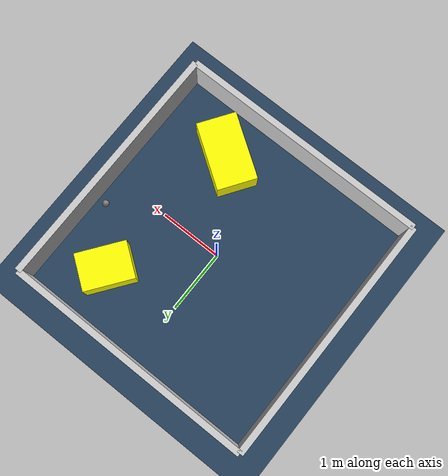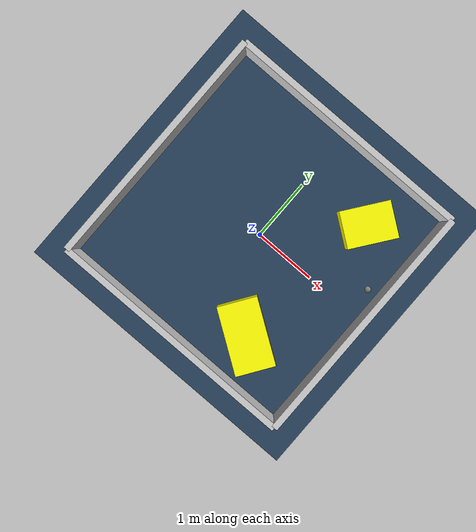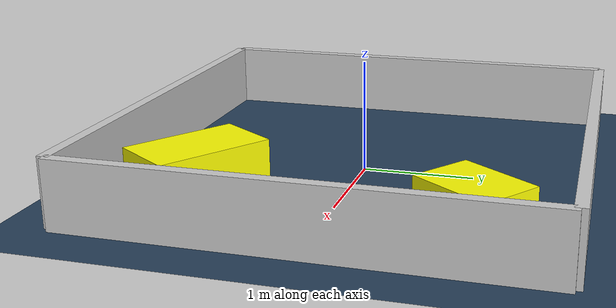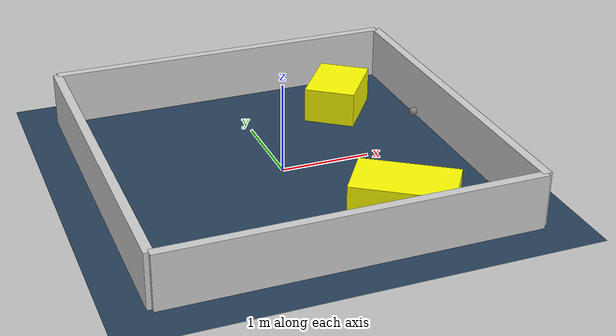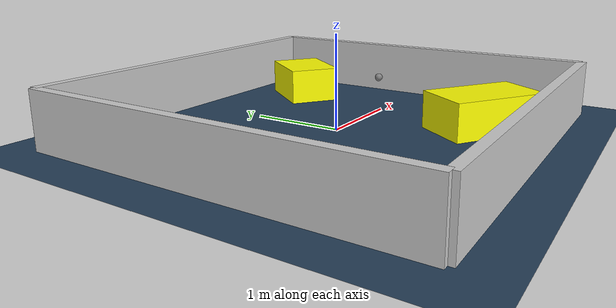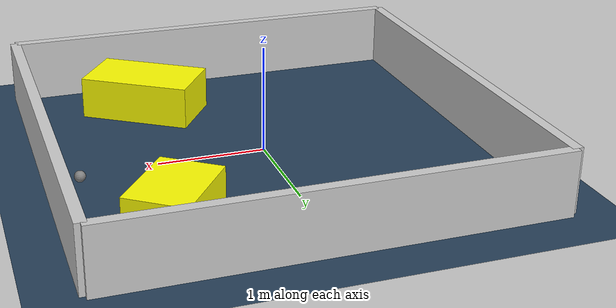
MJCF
<?xml version="1.0" ?>
<mujoco model="generated_environment">
  <option timestep="0.01" integrator="RK4" cone="elliptic"/>
  <default>
    <geom density="1"/>
  </default>
  <asset>
    <texture builtin="gradient" height="3072" rgb1="0.3 0.5 0.7" rgb2="0 0 0" type="skybox" width="512"/>
    <texture builtin="checker" height="300" mark="edge" markrgb="0.8 0.8 0.8" name="groundplane" rgb1="0.2 0.3 0.4" rgb2="0.1 0.2 0.3" type="2d" width="300"/>
    <material name="groundplane" reflectance="0.2" texrepeat="5 5" texture="groundplane" texuniform="true"/>
    <material name="robot" rgba="0.0 1.0 0.0 1"/>
  </asset>
  <worldbody>
    <light dir="0 0 -1" directional="true" pos="0 0 1.5"/>
    <geom condim="4" friction="1.0 0.005 0.001" material="groundplane" name="floor" size="0 0 0.05" type="plane"/>
    <body name="walls">
      <geom name="wall_1" condim="4" pos="-2.0 0.0 0.3" rgba="0.800000011920929 0.800000011920929 0.800000011920929 1.0" size="0.05 2.0 0.3" type="box"/>
      <geom name="wall_2" condim="4" pos="2.0 0.0 0.3" rgba="0.800000011920929 0.800000011920929 0.800000011920929 1.0" size="0.05 2.0 0.3" type="box"/>
      <geom name="wall_3" condim="4" pos="0.0 -2.0 0.3" rgba="0.800000011920929 0.800000011920929 0.800000011920929 1.0" size="2.0 0.05 0.3" type="box"/>
      <geom name="wall_4" condim="4" pos="0.0 2.0 0.3" rgba="0.800000011920929 0.800000011920929 0.800000011920929 1.0" size="2.0 0.05 0.3" type="box"/>
    </body>
    <body name="robot">
      <joint name="joint_x" type="slide" pos="0 0 0" axis="1 0 0"/>
      <joint name="joint_y" type="slide" pos="0 0 0" axis="0 1 0"/>
      <geom name="robot" type="sphere" pos="1.7704134382276564 0.43932755203290297 0.2" size="0.05" mass="5." friction="1.0 0.005 0.0001" condim="4"/>
      <site name="sensor_ball"/>
    </body>
    <body name="obstacle_1_movable">
      <geom name="obstacle_1_movable" condim="4" pos="1.1318228569889048 1.1754245122258804 0.2" euler="0 0 233.48712170818297" friction="1.0 0.005 0.001" rgba="1 1 0 1" size="0.3945254096885594 0.2903129738420133 0.2" type="box" mass="0.1"/>
      <joint type="free"/>
    </body>
    <body name="obstacle_2_movable">
      <geom name="obstacle_2_movable" condim="4" pos="0.8322470540013769 -1.2752250779921381 0.2" euler="0 0 235.852259750449" friction="1.0 0.005 0.001" rgba="1 1 0 1" size="0.3132852578380523 0.5376433738369579 0.2" type="box" mass="0.1"/>
      <joint type="free"/>
    </body>
  </worldbody>
  <actuator>
    <motor name="actuator_x" joint="joint_x" gear="1" ctrlrange="-1 1"/>
    <motor name="actuator_y" joint="joint_y" gear="1" ctrlrange="-1 1"/>
  </actuator>
</mujoco>
